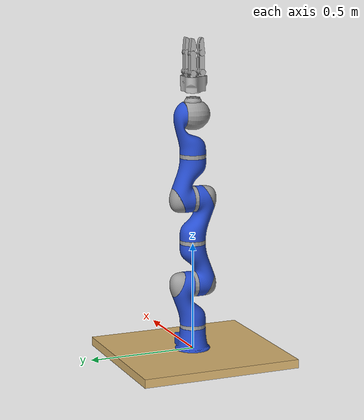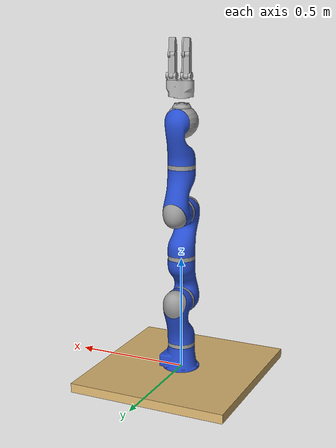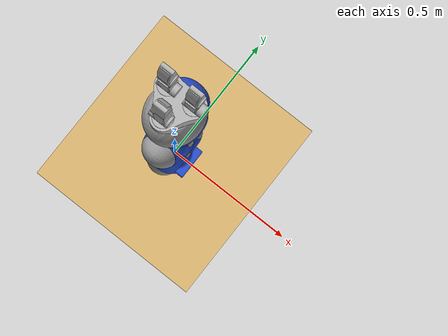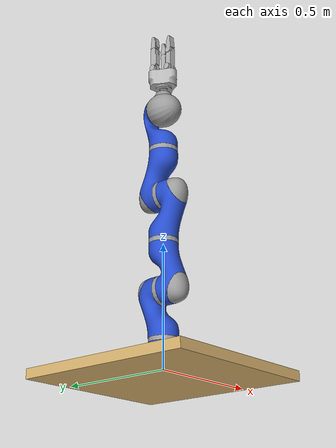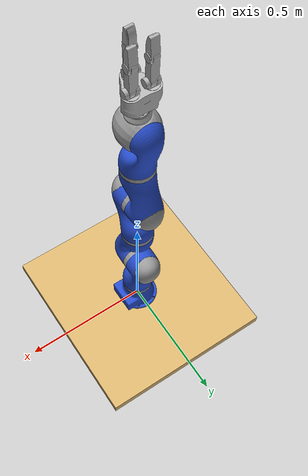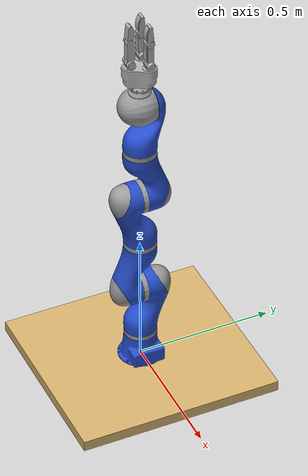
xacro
<?xml version="1.0"?>
<robot xmlns:xacro="http://www.ros.org/wiki/xacro" name="lwr">

  <xacro:arg name="use_gazebo" default="1"/>
  <xacro:arg name="use_transmission" default="1"/>
  <xacro:arg name="collision_simple" default="1"/>
  <xacro:arg name="visual_simple" default="0"/>

  <!-- KUKA LWR4 arm -->
  <xacro:include filename="$(find kuka_lwr4_description)/urdf/lwr.urdf.xacro"/>

  <!-- Schunk SDH2 hand -->
  <xacro:include filename="$(find schunk_description)/urdf/sdh/sdh.urdf.xacro"/>
  <xacro:include filename="$(find schunk_description)/urdf/materials.urdf.xacro"/>
  <schunk_sdh name="sdh" parent="lwr_arm_7_link">
    <origin rpy="0.0 0.0 ${0.5*M_PI}" xyz="0 0 0.022"/>
  </schunk_sdh>

  <xacro:if value="$(arg use_transmission)">
    <xacro:include filename="$(find schunk_description)/urdf/sdh/sdh.transmission.xacro"/>
    <schunk_sdh_transmission name="sdh"/>
  </xacro:if>

  <xacro:if value="$(arg use_gazebo)">
    <xacro:include filename="$(find schunk_description)/urdf/sdh/sdh.gazebo.xacro"/>
    <schunk_sdh_gazebo name="sdh"/>
  </xacro:if>

</robot>

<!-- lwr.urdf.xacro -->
<robot xmlns:xacro="http://www.ros.org/wiki/xacro" name="lwr">

  <xacro:arg name="use_gazebo" default="1"/>
  <xacro:arg name="use_transmission" default="1"/>
  <xacro:arg name="collision_simple" default="1"/>
  <xacro:arg name="visual_simple" default="0"/>

  <xacro:include filename="$(find kuka_lwr4_description)/urdf/defs/kuka_lwr_arm_defs.urdf.xacro"/>
  <xacro:if value="$(arg use_gazebo)">
    <xacro:include filename="$(find kuka_lwr4_description)/urdf/defs/gazebo_defs.gazebo"/>
  </xacro:if>
  <xacro:include filename="$(find kuka_lwr4_description)/urdf/defs/materials.xml"/>

  <link name="table">
    <visual>
      <origin xyz="0 0 -0.02" rpy="0 0 0"/>
      <geometry>
        <box size="0.7 0.75 0.04"/>
      </geometry>
      <material name="table_brown">
        <!-- wooden brown table -->
        <color rgba="0.839215686 0.694117647 0.42745098 1.0"/>
      </material>
    </visual>
    <collision>
      <origin xyz="0 0 -0.02" rpy="0 0 0"/>
      <geometry>
        <box size="0.7 0.75 0.04"/>
      </geometry>
    </collision>
  </link>

  <xacro:if value="$(arg use_gazebo)">
  <gazebo reference="table">
    <!-- Gazebo wood texture -->
    <material>Gazebo/Wood</material>
  </gazebo>
  </xacro:if>

  <kuka_lwr_arm parent="table" name="lwr" right="1" gazebo="$(arg use_gazebo)" transmission="$(arg use_transmission)" collisionsimple="$(arg collision_simple)" visualsimple="$(arg visual_simple)">
    <origin xyz="0 0 0" rpy="0 0 0"/>
  </kuka_lwr_arm>

</robot>

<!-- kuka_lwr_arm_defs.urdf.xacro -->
<robot xmlns:sensor="http://playerstage.sourceforge.net/gazebo/xmlschema/#sensor"
       xmlns:controller="http://playerstage.sourceforge.net/gazebo/xmlschema/#controller"
       xmlns:interface="http://playerstage.sourceforge.net/gazebo/xmlschema/#interface"
       xmlns:xacro="http://www.ros.org/wiki/xacro">

  <xacro:include filename="$(find kuka_lwr4_description)/urdf/defs/util_defs.xacro"/>

  <xacro:property name="arm_elem_base_mass" value="2.0"/>
  <xacro:property name="arm_elem_link_mass" value="2.0"/>
  <xacro:property name="arm_elem_end_link_mass" value="2.0"/>
  <xacro:property name="arm_elem_ball_link_mass" value="2.0"/>

  <xacro:property name="arm_velocity_scale_factor" value="1"/>

  <xacro:macro name="kuka_lwr_arm" params="parent name right gazebo transmission collisionsimple visualsimple *origin">

    <joint name="${parent}_${name}_arm_base_joint" type="fixed">
      <xacro:insert_block name="origin"/>
      <parent link="${parent}"/>
      <child link="base"/>
    </joint>

    <link name="base">
      <inertial>
        <mass value="${arm_elem_base_mass}"/>
        <origin xyz="0 0 0.055"/>
        <cylinder_inertia_def radius="0.06" length="0.11"
                              mass="${arm_elem_base_mass}"/>
      </inertial>

      <xacro:unless value="${visualsimple}">
      <visual>
        <origin xyz="0 0 0" rpy="0 0 ${M_PI}"/>
        <geometry>
          <mesh filename="package://kuka_lwr4_description/meshes/kuka_colour/base.dae"/>
        </geometry>
        <material name="Blue"/>
      </visual>
      </xacro:unless>
      <xacro:if value="${visualsimple}">
      <visual>
        <origin rpy="0 0 0" xyz="0.04 0 0.03"/>
        <geometry>
          <box size="0.08 0.12 0.06"/>
        </geometry>
        <material name="Blue"/>
      </visual>
      <visual>
        <origin rpy="0 0 0" xyz="0 0 0.05"/>
        <geometry>
          <cylinder length="0.1" radius="0.06"/>
        </geometry>
        <material name="Blue"/>
      </visual>
      </xacro:if>

      <xacro:unless value="${collisionsimple}">
      <collision>
        <origin xyz="0 0 0.055" rpy="0 0 ${M_PI}"/>
        <geometry>
          <mesh filename="package://kuka_lwr4_description/meshes/lwr/convex/arm_base_convex.stl"/>
        </geometry>
      </collision>
      </xacro:unless>
      <xacro:if value="${collisionsimple}">
      <collision>
        <origin rpy="0 0 0" xyz="0.04 0 0.03"/>
        <geometry>
          <box size="0.08 0.12 0.06"/>
        </geometry>
      </collision>
      <collision>
        <origin rpy="0 0 0" xyz="0 0 0.05"/>
        <geometry>
          <cylinder length="0.1" radius="0.06"/>
        </geometry>
      </collision>
      </xacro:if>
    </link>

    <xacro:if value="${gazebo}">
    <gazebo reference="calib_${name}_arm_base_link">
      <turnGravityOff>true</turnGravityOff>
    </gazebo>
    </xacro:if>

    <joint name="${name}_arm_0_joint" type="revolute">
      <origin xyz="0 0 0.11" rpy="0 0 ${M_PI}"/>
      <axis xyz="0 0 1"/>
      <limit lower="${-170 * M_PI / 180}" upper="${170 * M_PI / 180}"
             effort="176" velocity="${arm_velocity_scale_factor * 110 * M_PI / 180}" />
      <safety_controller soft_lower_limit="${-168 * M_PI / 180}"
                         soft_upper_limit="${168 * M_PI / 180}"
                         k_position="30"
                         k_velocity="30"/>
      <dynamics damping="1.0"/>
      <parent link="base"/>
      <child link="${name}_arm_1_link"/>
    </joint>

    <link name="${name}_arm_1_link">
      <inertial>
        <mass value="${arm_elem_link_mass}"/>
        <origin rpy="0 0 0" xyz="0 -0.06 0.130"/>
        <cuboid_inertia_def length="0.12" width="0.06" height="0.260"
                            mass="${arm_elem_link_mass}"/>
      </inertial>

      <xacro:unless value="${visualsimple}">
      <visual>
        <origin rpy="0 0 ${1.5*M_PI}" xyz="0 0 0.2"/>
        <geometry>
          <mesh filename="package://kuka_lwr4_description/meshes/kuka_colour/link1.dae"/>
        </geometry>
        <material name="Blue"/>
      </visual>
      <visual>
        <origin rpy="0 0 ${1.5*M_PI}" xyz="0 0 0.2"/>
        <geometry>
          <mesh filename="package://kuka_lwr4_description/meshes/kuka_colour/link1_m.dae"/>
        </geometry>
        <material name="Grey"/>
      </visual>
      <visual>
        <origin rpy="0 0 0" xyz="0 0 0"/>
        <geometry>
          <mesh filename="package://kuka_lwr4_description/meshes/kuka_colour/kuka_ring.dae"/>
        </geometry>
        <material name="Grey"/>
      </visual>
      </xacro:unless>
      <xacro:if value="${visualsimple}">
      <visual>
        <origin rpy="0 0 0" xyz="0 0 0.05"/>
        <geometry>
          <cylinder length="0.1" radius="0.06"/>
        </geometry>
        <material name="Blue"/>
      </visual>
      <visual>
        <origin rpy="0 0 0" xyz="0 -0.04 0.12"/>
        <geometry>
          <cylinder length="0.05" radius="0.03"/>
        </geometry>
        <material name="Blue"/>
      </visual>
      <visual>
        <origin rpy="0 0 0" xyz="0 -0.04 0.2"/>
        <geometry>
          <sphere radius="0.06"/>
        </geometry>
        <material name="Blue"/>
      </visual>
      </xacro:if>

      <xacro:unless value="${collisionsimple}">
      <collision>
        <origin xyz="0 0 0" rpy="0 0 0"/>
        <geometry>
          <mesh filename="package://kuka_lwr4_description/meshes/lwr/convex/arm_segment_a_convex.stl"/>
        </geometry>
      </collision>
      </xacro:unless>
      <xacro:if value="${collisionsimple}">
      <collision>
        <origin rpy="0 0 0" xyz="0 0 0.05"/>
        <geometry>
          <cylinder length="0.1" radius="0.06"/>
        </geometry>
      </collision>
      <collision>
        <origin rpy="0 0 0" xyz="0 -0.04 0.2"/>
        <geometry>
          <sphere radius="0.06"/>
      </geometry>
      </collision>
      </xacro:if>
    </link>

    <xacro:if value="${gazebo}">
    <gazebo reference="${name}_arm_1_link">
      <gravity>0</gravity>
    </gazebo>
    </xacro:if>

    <xacro:if value="${transmission}">
    <transmission name="${name}_arm_0_trans" type="SimpleTransmission">
      <actuator name="${name}_arm_0_motor"/>
      <joint name="${name}_arm_0_joint"/>
      <mechanicalReduction>1.0</mechanicalReduction>
    </transmission>
    </xacro:if>

    <!-- Third segment of the arm. Joint along y-axis -->
    <joint name="${name}_arm_1_joint" type="revolute">
      <origin xyz="0 0 0.2" rpy="0 0 0"/>
      <axis xyz="0 1 0"/>
      <limit lower="${-120 * M_PI / 180}" upper="${120 * M_PI / 180}"
             effort="176" velocity="${arm_velocity_scale_factor * 110 * M_PI / 180}" />
      <safety_controller soft_lower_limit="${-118 * M_PI / 180}"
                         soft_upper_limit="${118 * M_PI / 180}"
                         k_position="30"
                         k_velocity="30"/>
      <dynamics damping="1.0" friction="10"/>
      <parent link="${name}_arm_1_link"/>
      <child link="${name}_arm_2_link"/>
    </joint>

    <link name="${name}_arm_2_link">
      <inertial>
        <mass value="${arm_elem_link_mass}"/>
        <origin rpy="0 0 0" xyz="0 0.06 ${0.130 - 0.06}"/>
        <cuboid_inertia_def length="0.12" width="0.06" height="0.260"
                            mass="${arm_elem_link_mass}"/>
      </inertial>

      <xacro:unless value="${visualsimple}">
      <visual>
        <origin rpy="0 0 ${1.5*M_PI}" xyz="0 0 0"/>
        <geometry>
          <mesh filename="package://kuka_lwr4_description/meshes/kuka_colour/link2.dae"/>
        </geometry>
        <material name="Blue"/>
      </visual>
      <visual>
        <origin rpy="0 0 ${1.5*M_PI}" xyz="0 0 0"/>
        <geometry>
          <mesh filename="package://kuka_lwr4_description/meshes/kuka_colour/link2_m.dae"/>
        </geometry>
        <material name="Grey"/>
      </visual>
      <visual>
        <origin rpy="${0.5*M_PI} 0 0" xyz="0 0 0"/>
        <geometry>
          <mesh filename="package://kuka_lwr4_description/meshes/kuka_colour/kuka_ring.dae"/>
        </geometry>
        <material name="Grey"/>
      </visual>
      </xacro:unless>
      <xacro:if value="${visualsimple}">
      <visual>
        <origin rpy="0 0 0" xyz="0 0 0.15"/>
        <geometry>
          <cylinder length="0.1" radius="0.06"/>
        </geometry>
        <material name="Blue"/>
      </visual>
      <visual>
        <origin rpy="0 0 0" xyz="0 0.04 0.08"/>
        <geometry>
          <cylinder length="0.05" radius="0.03"/>
        </geometry>
        <material name="Blue"/>
      </visual>
      <visual>
        <origin rpy="0 0 0" xyz="0 0.04 0"/>
        <geometry>
          <sphere radius="0.06"/>
        </geometry>
      <material name="Blue"/>
      </visual>
      </xacro:if>

      <xacro:unless value="${collisionsimple}">
      <collision>
        <origin xyz="0 0 0.2" rpy="${M_PI} 0 0"/>
        <geometry>
          <mesh filename="package://kuka_lwr4_description/meshes/lwr/convex/arm_segment_b_convex.stl"/>
        </geometry>
      </collision>
      </xacro:unless>
      <xacro:if value="${collisionsimple}">
      <collision>
        <origin rpy="0 0 0" xyz="0 0 0.15"/>
        <geometry>
          <cylinder length="0.1" radius="0.06"/>
        </geometry>
      </collision>
      <collision>
        <origin rpy="0 0 0" xyz="0 0.04 0"/>
        <geometry>
        <sphere radius="0.06"/>
      </geometry>
      </collision>
      </xacro:if>
    </link>

    <xacro:if value="${gazebo}">
    <gazebo reference="${name}_arm_2_link">
      <gravity>0</gravity>
    </gazebo>
    </xacro:if>

    <xacro:if value="${transmission}">
    <transmission name="${name}_arm_1_trans" type="SimpleTransmission">
      <actuator name="${name}_arm_1_motor"/>
      <joint name="${name}_arm_1_joint"/>
      <mechanicalReduction>1.0</mechanicalReduction>
    </transmission>
    </xacro:if>

    <joint name="${name}_arm_2_joint" type="revolute">
      <origin xyz="0 0 0.20" rpy="0 0 0"/>
      <axis xyz="0 0 1"/>
      <limit lower="${-170 * M_PI / 180}" upper="${170 * M_PI / 180}"
             effort="100" velocity="${arm_velocity_scale_factor * 130 * M_PI / 180}" />
      <safety_controller soft_lower_limit="${-168 * M_PI / 180}"
                         soft_upper_limit="${168 * M_PI / 180}"
                         k_position="30"
                         k_velocity="30"/>
      <dynamics damping="1.0"/>
      <parent link="${name}_arm_2_link"/>
      <child link="${name}_arm_3_link"/>
    </joint>

    <link name="${name}_arm_3_link">
      <inertial>
        <mass value="${arm_elem_link_mass}"/>
        <origin rpy="0 0 0" xyz="0 0.06 0.130"/>
        <cuboid_inertia_def length="0.12" width="0.06" height="0.260"
                            mass="${arm_elem_link_mass}"/>
      </inertial>

      <xacro:unless value="${visualsimple}">
      <visual>
        <origin rpy="0 0 ${1.5*M_PI}" xyz="0 0 0.2"/>
        <geometry>
          <mesh filename="package://kuka_lwr4_description/meshes/kuka_colour/link3.dae"/>
        </geometry>
        <material name="Blue"/>
      </visual>
      <visual>
        <origin rpy="0 0 ${1.5*M_PI}" xyz="0 0 0.2"/>
        <geometry>
          <mesh filename="package://kuka_lwr4_description/meshes/kuka_colour/link3_m.dae"/>
        </geometry>
        <material name="Grey"/>
      </visual>
      <visual>
        <origin rpy="0 0 0" xyz="0 0 0"/>
        <geometry>
          <mesh filename="package://kuka_lwr4_description/meshes/kuka_colour/kuka_ring.dae"/>
        </geometry>
        <material name="Grey"/>
      </visual>
      </xacro:unless>
      <xacro:if value="${visualsimple}">
      <visual>
        <origin rpy="0 0 0" xyz="0 0 0.05"/>
        <geometry>
          <cylinder length="0.1" radius="0.06"/>
        </geometry>
        <material name="Blue"/>
      </visual>
      <visual>
        <origin rpy="0 0 0" xyz="0 0.04 0.12"/>
        <geometry>
          <cylinder length="0.05" radius="0.03"/>
        </geometry>
        <material name="Blue"/>
      </visual>
      <visual>
        <origin rpy="0 0 0" xyz="0 0.04 0.2"/>
        <geometry>
          <sphere radius="0.06"/>
        </geometry>
        <material name="Blue"/>
      </visual>
      </xacro:if>

      <xacro:unless value="${collisionsimple}">
      <collision>
        <origin xyz="0 0 0" rpy="0 0 ${M_PI}"/>
        <geometry>
          <mesh filename="package://kuka_lwr4_description/meshes/lwr/convex/arm_segment_a_convex.stl"/>
        </geometry>
      </collision>
      </xacro:unless>
      <xacro:if value="${collisionsimple}">
      <collision>
        <origin rpy="0 0 0" xyz="0 0 0.05"/>
        <geometry>
          <cylinder length="0.1" radius="0.06"/>
        </geometry>
      </collision>
      <collision>
        <origin rpy="0 0 0" xyz="0 0.04 0.2"/>
        <geometry>
          <sphere radius="0.06"/>
        </geometry>
      </collision>
      </xacro:if>
    </link>

    <xacro:if value="${gazebo}">
    <gazebo reference="${name}_arm_3_link">
      <turnGravityOff>true</turnGravityOff>
    </gazebo>
    </xacro:if>

    <xacro:if value="${transmission}">
    <transmission name="${name}_arm_2_trans" type="SimpleTransmission">
      <actuator name="${name}_arm_2_motor"/>
      <joint name="${name}_arm_2_joint"/>
      <mechanicalReduction>1.0</mechanicalReduction>
    </transmission>
    </xacro:if>

    <!-- fifth element of the arm. x-axis -->
    <joint name="${name}_arm_3_joint" type="revolute">
      <origin xyz="0 0 0.20" rpy="0 0 0"/>
      <axis xyz="0 -1 0"/>
      <limit lower="${-120 * M_PI / 180}" upper="${120 * M_PI / 180}"
             effort="100" velocity="${arm_velocity_scale_factor * 130 * M_PI / 180}" />
      <safety_controller soft_lower_limit="${-118 * M_PI / 180}"
                         soft_upper_limit="${118 * M_PI / 180}"
                         k_position="30"
                         k_velocity="30"/>
      <dynamics damping="1.0"/>
      <parent link="${name}_arm_3_link"/>
      <child link="${name}_arm_4_link"/>
    </joint>

    <link name="${name}_arm_4_link">
      <inertial>
        <mass value="${arm_elem_link_mass}"/>
        <origin rpy="0 0 0" xyz="0 -0.06 ${0.130 - 0.06}"/>
        <cuboid_inertia_def length="0.12" width="0.06" height="0.2600"
                            mass="${arm_elem_link_mass}"/>
      </inertial>

      <xacro:unless value="${visualsimple}">
      <visual>
        <origin rpy="0 0 ${1.5*M_PI}" xyz="0 0 0"/>
        <geometry>
          <mesh filename="package://kuka_lwr4_description/meshes/kuka_colour/link4.dae"/>
        </geometry>
        <material name="Blue"/>
      </visual>
      <visual>
        <origin rpy="0 0 ${1.5*M_PI}" xyz="0 0 0"/>
        <geometry>
          <mesh filename="package://kuka_lwr4_description/meshes/kuka_colour/link4_m.dae"/>
        </geometry>
        <material name="Grey"/>
      </visual>
      <visual>
        <origin rpy="${0.5*M_PI} 0 0" xyz="0 0 0"/>
        <geometry>
          <mesh filename="package://kuka_lwr4_description/meshes/kuka_colour/kuka_ring.dae"/>
        </geometry>
        <material name="Grey"/>
      </visual>
      </xacro:unless>
      <xacro:if value="${visualsimple}">
      <visual>
        <origin rpy="0 0 0" xyz="0 0 0.15"/>
        <geometry>
          <cylinder length="0.1" radius="0.06"/>
        </geometry>
        <material name="Blue"/>
      </visual>
      <visual>
        <origin rpy="0 0 0" xyz="0 -0.04 0.08"/>
        <geometry>
          <cylinder length="0.05" radius="0.03"/>
        </geometry>
        <material name="Blue"/>
      </visual>
      <visual>
        <origin rpy="0 0 0" xyz="0 -0.04 0"/>
        <geometry>
          <sphere radius="0.06"/>
        </geometry>
        <material name="Blue"/>
      </visual>
      </xacro:if>

      <xacro:unless value="${collisionsimple}">
      <collision>
        <origin xyz="0 0 0.2" rpy="0 ${M_PI} 0"/>
        <geometry>
          <mesh filename="package://kuka_lwr4_description/meshes/lwr/convex/arm_segment_b_convex.stl"/>
        </geometry>
      </collision>
      </xacro:unless>
      <xacro:if value="${collisionsimple}">
      <collision>
        <origin rpy="0 0 0" xyz="0 0 0.15"/>
        <geometry>
          <cylinder length="0.1" radius="0.06"/>
        </geometry>
      </collision>
      <collision>
        <origin rpy="0 0 0" xyz="0 -0.04 0"/>
        <geometry>
          <sphere radius="0.06"/>
        </geometry>
      </collision>
      </xacro:if>
    </link>

    <xacro:if value="${gazebo}">
    <gazebo reference="${name}_arm_4_link">
      <turnGravityOff>true</turnGravityOff>
    </gazebo>
    </xacro:if>

    <xacro:if value="${transmission}">
    <transmission name="${name}_arm_3_trans" type="SimpleTransmission">
      <actuator name="${name}_arm_3_motor"/>
      <joint name="${name}_arm_3_joint"/>
      <mechanicalReduction>1.0</mechanicalReduction>
    </transmission>
    </xacro:if>

    <joint name="${name}_arm_4_joint" type="revolute">
      <origin xyz="0 0 0.20" rpy="0 0 0"/>
      <axis xyz="0 0 1"/>
      <limit lower="${-170 * M_PI / 180}" upper="${170 * M_PI / 180}"
             effort="100" velocity="${arm_velocity_scale_factor * 130 * M_PI / 180}" />
      <safety_controller soft_lower_limit="${-168 * M_PI / 180}"
                         soft_upper_limit="${168 * M_PI / 180}"
                         k_position="30"
                         k_velocity="30"/>
      <dynamics damping="1.0"/>
      <parent link="${name}_arm_4_link"/>
      <child link="${name}_arm_5_link"/>
    </joint>

    <link name="${name}_arm_5_link">
      <inertial>
        <mass value="${arm_elem_link_mass}"/>
        <origin rpy="0 0 0" xyz="0 0 0.124"/>
        <cuboid_inertia_def length="0.12" width="0.06" height="0.248"
                            mass="${arm_elem_link_mass}"/>
      </inertial>

      <xacro:unless value="${visualsimple}">
      <visual>
        <origin rpy="0 0 ${1.5*M_PI}" xyz="0 0 0.19"/>
        <geometry name="${name}_arm_5_geom">
          <mesh filename="package://kuka_lwr4_description/meshes/kuka_colour/link5.dae"/>
        </geometry>
        <material name="Blue"/>
      </visual>
      <visual>
        <origin rpy="0 0 0" xyz="0 0 0"/>
        <geometry>
          <mesh filename="package://kuka_lwr4_description/meshes/kuka_colour/kuka_ring.dae"/>
        </geometry>
        <material name="Grey"/>
      </visual>
      </xacro:unless>
      <xacro:if value="${visualsimple}">
      <visual>
        <origin rpy="0 0 0" xyz="0 0 0.05"/>
        <geometry>
          <cylinder length="0.1" radius="0.06"/>
        </geometry>
        <material name="Blue"/>
      </visual>
      <visual>
        <origin rpy="0 0 0" xyz="0 -0.04 0.12"/>
        <geometry>
          <cylinder length="0.05" radius="0.03"/>
        </geometry>
        <material name="Blue"/>
      </visual>
      <visual>
        <origin rpy="0 0 0" xyz="0 -0.04 0.2"/>
        <geometry>
          <sphere radius="0.06"/>
        </geometry>
        <material name="Blue"/>
      </visual>
      </xacro:if>

      <xacro:unless value="${collisionsimple}">
      <collision>
        <origin xyz="0 0 0" rpy="0 0 0"/>
        <geometry>
          <mesh filename="package://kuka_lwr4_description/meshes/lwr/convex/arm_segment_last_convex.stl"/>
        </geometry>
      </collision>
      </xacro:unless>
      <xacro:if value="${collisionsimple}">
      <collision>
        <origin rpy="0 0 0" xyz="0 0 0.05"/>
        <geometry>
          <cylinder length="0.1" radius="0.06"/>
        </geometry>
      </collision>
      <collision>
        <origin rpy="0 0 0" xyz="0 -0.04 0.2"/>
        <geometry>
          <sphere radius="0.06"/>
        </geometry>
      </collision>
      </xacro:if>
    </link>

    <xacro:if value="${gazebo}">
    <gazebo reference="${name}_arm_5_link">
      <turnGravityOff>true</turnGravityOff>
    </gazebo>
    </xacro:if>

    <xacro:if value="${transmission}">
    <transmission name="${name}_arm_4_trans" type="SimpleTransmission">
      <actuator name="${name}_arm_4_motor"/>
      <joint name="${name}_arm_4_joint"/>
      <mechanicalReduction>1.0</mechanicalReduction>
    </transmission>
    </xacro:if>

    <joint name="${name}_arm_5_joint" type="revolute">
      <origin xyz="0 0 0.19" rpy="0 0 0"/>
      <axis xyz="0 1 0"/>
      <limit lower="${-120 * M_PI / 180}" upper="${120 * M_PI / 180}"
             effort="38" velocity="${arm_velocity_scale_factor * 180 * M_PI / 180}" />
      <safety_controller soft_lower_limit="${-118 * M_PI / 180}"
                         soft_upper_limit="${118 * M_PI / 180}"
                         k_position="30"
                         k_velocity="30"/>
      <dynamics damping="1.0"/>
      <parent link="${name}_arm_5_link"/>
      <child link="${name}_arm_6_link"/>
    </joint>

    <link name="${name}_arm_6_link">
      <inertial>
        <mass value="0.2"/>
        <origin rpy="0 0 0" xyz="0 0 0.0625"/>
        <cuboid_inertia_def length="0.125" width="0.125" height="0.125"
                            mass="0.2"/>
      </inertial>

      <xacro:unless value="${visualsimple}">
      <visual>
        <origin rpy="0 0 ${M_PI}" xyz="0 0 0"/>
        <geometry>
          <mesh filename="package://kuka_lwr4_description/meshes/kuka_colour/kuka_wrist.dae"/>
        </geometry>
        <material name="Grey"/>
      </visual>
      </xacro:unless>
      <xacro:if value="${visualsimple}">
      <visual>
        <origin rpy="0 0 0" xyz="0 0.01 0"/>
        <geometry>
          <sphere radius="0.07"/>
        </geometry>
        <material name="Grey"/>
      </visual>
      <visual>
        <origin rpy="0 0 0" xyz="0 -0.01 0"/>
        <geometry>
          <sphere radius="0.07"/>
        </geometry>
      </visual>
      </xacro:if>

      <xacro:unless value="${collisionsimple}">
      <collision>
        <origin xyz="0 0 0" rpy="0 0 0"/>
        <geometry>
          <mesh filename="package://kuka_lwr4_description/meshes/lwr/convex/arm_wrist_convex.stl"/>
        </geometry>
      </collision>
      </xacro:unless>
      <xacro:if value="${collisionsimple}">
      <collision>
        <origin rpy="0 0 0" xyz="0 0.01 0"/>
        <geometry>
          <sphere radius="0.07"/>
        </geometry>
        <material name="Grey"/>
      </collision>
      <collision>
        <origin rpy="0 0 0" xyz="0 -0.01 0"/>
        <geometry>
          <sphere radius="0.07"/>
        </geometry>
      </collision>
      </xacro:if>
    </link>

    <xacro:if value="${gazebo}">
    <gazebo reference="${name}_arm_6_link">
      <turnGravityOff>true</turnGravityOff>
    </gazebo>
    </xacro:if>

    <xacro:if value="${transmission}">
    <transmission name="${name}_arm_5_trans" type="SimpleTransmission">
      <actuator name="${name}_arm_5_motor"/>
      <joint name="${name}_arm_5_joint"/>
      <mechanicalReduction>1.0</mechanicalReduction>
    </transmission>
    </xacro:if>

    <joint name="${name}_arm_6_joint" type="revolute">
      <origin xyz="0 0 0.078" rpy="0 0 ${M_PI}"/>
      <axis xyz="0 0 1"/>
      <limit lower="${-170 * M_PI / 180}" upper="${170 * M_PI / 180}"
             effort="38" velocity="${arm_velocity_scale_factor * 180 * M_PI / 180}" />
      <safety_controller soft_lower_limit="${-168 * M_PI / 180}"
                         soft_upper_limit="${168 * M_PI / 180}"
                         k_position="30"
                         k_velocity="30"/>
      <dynamics damping="1.0"/>
      <parent link="${name}_arm_6_link"/>
      <child link="${name}_arm_7_link"/>
    </joint>

    <link name="${name}_arm_7_link">
      <inertial>
        <mass value="0.2"/>
        <origin xyz="0 0 0"/>
        <cuboid_inertia_def length="1" width="1" height="1"
                            mass="0.2"/>
      </inertial>

      <xacro:unless value="${visualsimple}">
      <visual>
        <origin xyz="0 0 0" rpy="0 0 0"/>
        <geometry>
          <mesh filename="package://kuka_lwr4_description/meshes/kuka_colour/link7.dae"/>
        </geometry>
        <material name="Grey"/>
      </visual>
      </xacro:unless>
      <xacro:if value="${visualsimple}">
      <visual>
        <origin rpy="0 0 -0.785398163397" xyz="0 0 0"/>
        <geometry>
          <cylinder length="0.05" radius="0.04"/>
        </geometry>
        <material name="Grey"/>
      </visual>
      </xacro:if>

      <xacro:unless value="${collisionsimple}">
      <collision>
        <origin xyz="0 0 0" rpy="0 0 ${right * -1/4 * M_PI}"/>
        <geometry>
          <cylinder radius="0.04" length="0.05"/>
        </geometry>
      </collision>
      </xacro:unless>
      <xacro:if value="${collisionsimple}">
      <collision>
        <origin rpy="0 0 -0.785398163397" xyz="0 0 0"/>
        <geometry>
          <cylinder length="0.05" radius="0.04"/>
        </geometry>
      </collision>
      </xacro:if>
    </link>

    <xacro:if value="${gazebo}">
    <gazebo reference="${name}_arm_7_link">
      <turnGravityOff>true</turnGravityOff>
    </gazebo>
    </xacro:if>

    <xacro:if value="${transmission}">
    <transmission name="${name}_arm_6_trans" type="SimpleTransmission">
      <actuator name="${name}_arm_6_motor"/>
      <joint name="${name}_arm_6_joint"/>
      <mechanicalReduction>1.0</mechanicalReduction>
    </transmission>
    </xacro:if>

  </xacro:macro>

</robot>

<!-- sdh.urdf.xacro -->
<robot xmlns:xacro="http://www.ros.org/wiki/xacro">

  <xacro:include filename="$(find schunk_description)/urdf/sdh/sdh.gazebo.xacro" />
  <xacro:include filename="$(find schunk_description)/urdf/sdh/sdh.transmission.xacro" />

  <xacro:macro name="schunk_sdh" params="parent name *origin">

    <!-- joint between arm_7_link and sdh_palm_link -->
    <joint name="${name}_palm_joint" type="fixed" >
      <insert_block name="origin" />
      <parent link="${parent}" />
      <child link="${name}_palm_link" />
    </joint>

    <link name="${name}_palm_link">
      <inertial>
        <origin xyz="0 0 0" rpy="0 0 0"/>
        <mass value="1"/>
        <inertia ixx="0.01" ixy="0" ixz="0" iyy="0.01" iyz="0" izz="0.01" />
      </inertial>

      <visual>
        <origin xyz="0 0 0" rpy="0 0 0" />
        <geometry>
          <mesh filename="package://schunk_description/meshes/sdh/palm.stl" />
        </geometry>
        <material name="Schunk/LightGrey" />
      </visual>

      <collision>
        <origin xyz="0 0 0" rpy="0 0 0" />
        <geometry>
          <mesh filename="package://schunk_description/meshes/sdh/palm.stl"/>
        </geometry>
      </collision>
    </link>

    <!-- grasp link -->
    <joint name="${name}_grasp_joint" type="fixed" >
      <origin xyz="0 0 0.15" rpy="0 0 0"/>
      <parent link="${name}_palm_link" />
      <child link="${name}_grasp_link" />
    </joint>

    <link name="${name}_grasp_link"/>

    <!-- tip link -->
    <joint name="${name}_tip_joint" type="fixed" >
      <origin xyz="0 0 0.22" rpy="0 0 0"/>
      <parent link="${name}_palm_link" />
      <child link="${name}_tip_link" />
    </joint>

    <link name="${name}_tip_link"/>

    <!-- finger1 -->
    <!-- joint between sdh_palm_link and sdh_finger_11_link -->
    <joint name="${name}_knuckle_joint" type="revolute">
      <origin xyz="0.01905 0.033 0.0745" rpy="0 0 3.14159265" />
      <parent link="${name}_palm_link"/>
      <child link="${name}_finger_11_link"/>
      <axis xyz="0 0 1" />
      <dynamics damping="1" />
      <limit effort="100" lower="0" upper="1.570796327" velocity="5"/>
    </joint>

    <link name="${name}_finger_11_link">
      <inertial>
        <origin xyz="0 0 0" rpy="0 0 0"/>
        <mass value="0.1"/>
        <inertia ixx="0.01" ixy="0" ixz="0" iyy="0.01" iyz="0" izz="0.01" />
      </inertial>

      <visual>
        <origin xyz="0 0 0" rpy="0 0 0" />
        <geometry>
          <mesh filename="package://schunk_description/meshes/sdh/knuckle.stl" />
        </geometry>
        <material name="Schunk/LightGrey" />
      </visual>

      <collision>
        <origin xyz="0 0 0" rpy="0 0 0" />
        <geometry>
        <mesh filename="package://schunk_description/meshes/sdh/knuckle.stl"/>
        </geometry>
      </collision>
    </link>

    <!-- joint between sdh_finger_11_link and sdh_finger_12_link -->
    <joint name="${name}_finger_12_joint" type="revolute">
      <origin xyz="0 0 0.0165" rpy="0 0 0" />
      <parent link="${name}_finger_11_link"/>
      <child link="${name}_finger_12_link"/>
      <axis xyz="0 1 0" />
      <dynamics damping="1" />
      <limit effort="100" lower="-1.570796327" upper="1.570796327" velocity="5"/>
    </joint>

    <link name="${name}_finger_12_link">
      <inertial>
        <origin xyz="0 0 0" rpy="0 0 0"/>
        <mass value="0.1"/>
        <inertia ixx="0.01" ixy="0" ixz="0" iyy="0.01" iyz="0" izz="0.01" />
      </inertial>

      <visual>
        <origin xyz="0 0 0" rpy="0 0 0" />
        <geometry>
          <mesh filename="package://schunk_description/meshes/sdh/finger.stl" />
        </geometry>
      <material name="Schunk/LightGrey" />
      </visual>

      <collision>
        <origin xyz="0 0 0" rpy="0 0 0" />
        <geometry>
          <mesh filename="package://schunk_description/meshes/sdh/finger.stl"/>
        </geometry>
      </collision>
    </link>

    <!-- joint between sdh_finger_12_link and sdh_finger_13_link -->
    <joint name="${name}_finger_13_joint" type="revolute">

      <origin xyz="0 0 0.0865" rpy="0 0 0" />
      <parent link="${name}_finger_12_link"/>
      <child link="${name}_finger_13_link"/>
      <axis xyz="0 1 0" />
      <dynamics damping="1" />
      <limit effort="100" lower="-1.570796327" upper="1.570796327" velocity="5"/>
    </joint>

    <link name="${name}_finger_13_link">
      <inertial>
      <origin xyz="0 0 0" rpy="0 0 0"/>
        <mass value="0.1"/>
        <inertia ixx="0.01" ixy="0" ixz="0" iyy="0.01" iyz="0" izz="0.01" />
      </inertial>

      <visual>
        <origin xyz="0 0 0" rpy="0 0 0" />
        <geometry>
          <mesh filename="package://schunk_description/meshes/sdh/finger_tip.stl" />
        </geometry>
        <material name="Schunk/LightGrey" />
      </visual>

      <collision>
        <origin xyz="0 0 0" rpy="0 0 0" />
        <geometry>
          <mesh filename="package://schunk_description/meshes/sdh/finger_tip.stl"/>
        </geometry>
      </collision>
    </link>

    <!-- finger2 -->
    <!-- joint between sdh_palm_link and sdh_finger_21_link -->
    <joint name="${name}_finger_21_joint" type="revolute">
      <mimic joint="${name}_knuckle_joint" multiplier="1" offset="0"/>
      <origin xyz="0.01905 -0.033 0.0745" rpy="0 0 3.14159265" />
      <parent link="${name}_palm_link"/>
      <child link="${name}_finger_21_link"/>
      <axis xyz="0 0 -1" />
      <dynamics damping="1" />
      <limit effort="100" lower="0" upper="1.570796327" velocity="5"/>
    </joint>

    <link name="${name}_finger_21_link">
      <inertial>
        <origin xyz="0 0 0" rpy="0 0 0"/>
        <mass value="0.1"/>
        <inertia ixx="0.01" ixy="0" ixz="0" iyy="0.01" iyz="0" izz="0.01" />
      </inertial>

      <visual>
        <origin xyz="0 0 0" rpy="0 0 0" />
        <geometry>
          <mesh filename="package://schunk_description/meshes/sdh/knuckle.stl" />
        </geometry>
        <material name="Schunk/LightGrey" />
      </visual>

      <collision>
        <origin xyz="0 0 0" rpy="0 0 0" />
        <geometry>
          <mesh filename="package://schunk_description/meshes/sdh/knuckle.stl"/>
        </geometry>
      </collision>
    </link>

    <!-- joint between sdh_finger_21_link and sdh_finger_22_link -->
    <joint name="${name}_finger_22_joint" type="revolute">
      <origin xyz="0 0 0.0165" rpy="0 0 0" />
      <parent link="${name}_finger_21_link"/>
      <child link="${name}_finger_22_link"/>
      <axis xyz="0 1 0" />
      <dynamics damping="1" />
      <limit effort="100" lower="-1.570796327" upper="1.570796327" velocity="5"/>
    </joint>

    <link name="${name}_finger_22_link">
      <inertial>
        <origin xyz="0 0 0" rpy="0 0 0"/>
        <mass value="0.1"/>
        <inertia ixx="0.01" ixy="0" ixz="0" iyy="0.01" iyz="0" izz="0.01" />
      </inertial>

      <visual>
        <origin xyz="0 0 0" rpy="0 0 0" />
        <geometry>
          <mesh filename="package://schunk_description/meshes/sdh/finger.stl" />
        </geometry>
        <material name="Schunk/LightGrey" />
      </visual>

      <collision>
        <origin xyz="0 0 0" rpy="0 0 0" />
        <geometry>
          <mesh filename="package://schunk_description/meshes/sdh/finger.stl"/>
        </geometry>
      </collision>
    </link>

    <!-- joint between sdh_finger_22_link and sdh_finger_23_link -->
    <joint name="${name}_finger_23_joint" type="revolute">
      <origin xyz="0 0 0.0865" rpy="0 0 0" />
      <parent link="${name}_finger_22_link"/>
      <child link="${name}_finger_23_link"/>
      <axis xyz="0 1 0" />
      <dynamics damping="1" />
      <limit effort="100" lower="-1.570796327" upper="1.570796327" velocity="5"/>
    </joint>

    <link name="${name}_finger_23_link">
      <inertial>
        <origin xyz="0 0 0" rpy="0 0 0"/>
        <mass value="0.1"/>
        <inertia ixx="0.01" ixy="0" ixz="0" iyy="0.01" iyz="0" izz="0.01" />
      </inertial>

      <visual>
        <origin xyz="0 0 0" rpy="0 0 0" />
        <geometry>
          <mesh filename="package://schunk_description/meshes/sdh/finger_tip.stl" />
        </geometry>
        <material name="Schunk/LightGrey" />
      </visual>

      <collision>
        <origin xyz="0 0 0" rpy="0 0 0" />
        <geometry>
          <mesh filename="package://schunk_description/meshes/sdh/finger_tip.stl"/>
        </geometry>
      </collision>
    </link>

    <!-- thumb -->
    <!-- joint between sdh_palm_link and sdh_thumb_1_link -->
    <joint name="${name}_thumb_1_joint" type="fixed">
      <origin xyz="-0.03811 0 0.0745 " rpy="0 0 0" />
      <parent link="${name}_palm_link"/>
      <child link="${name}_thumb_1_link"/>
    </joint>

    <link name="${name}_thumb_1_link">
      <inertial>
        <origin xyz="0 0 0" rpy="0 0 0"/>
        <mass value="0.1"/>
        <inertia ixx="0.01" ixy="0" ixz="0" iyy="0.01" iyz="0" izz="0.01" />
      </inertial>

      <visual>
        <origin xyz="0 0 0" rpy="0 0 0" />
        <geometry>
          <mesh filename="package://schunk_description/meshes/sdh/knuckle.stl" />
        </geometry>
        <material name="Schunk/LightGrey" />
      </visual>

      <collision>
        <origin xyz="0 0 0" rpy="0 0 0" />
        <geometry>
          <mesh filename="package://schunk_description/meshes/sdh/knuckle.stl"/>
        </geometry>
      </collision>
    </link>

    <!-- joint between sdh_thumb_1_link and shd_thumb_2_link -->
    <joint name="${name}_thumb_2_joint" type="revolute">
    <origin xyz="0 0 0.0165" rpy="0 0 0" />
    <parent link="${name}_thumb_1_link"/>
    <child link="${name}_thumb_2_link"/>
    <axis xyz="0 1 0" />
    <dynamics damping="1" />
    <limit effort="100" lower="-1.570796327" upper="1.570796327" velocity="5"/>
    </joint>

    <link name="${name}_thumb_2_link">
      <inertial>
        <origin xyz="0 0 0" rpy="0 0 0"/>
        <mass value="0.1"/>
        <inertia ixx="0.01" ixy="0" ixz="0" iyy="0.01" iyz="0" izz="0.01" />
      </inertial>

      <visual>
        <origin xyz="0 0 0" rpy="0 0 0" />
        <geometry>
          <mesh filename="package://schunk_description/meshes/sdh/finger.stl" />
        </geometry>
        <material name="Schunk/LightGrey" />
      </visual>

      <collision>
        <origin xyz="0 0 0" rpy="0 0 0" />
        <geometry>
          <mesh filename="package://schunk_description/meshes/sdh/finger.stl"/>
        </geometry>
      </collision>
    </link>

    <!-- joint between sdh_thumb_2_link and sdh_thumb_3_link -->
    <joint name="${name}_thumb_3_joint" type="revolute">
      <origin xyz="0 0 0.0865" rpy="0 0 0" />
      <parent link="${name}_thumb_2_link"/>
      <child link="${name}_thumb_3_link"/>
      <axis xyz="0 1 0" />
      <dynamics damping="1" />
      <limit effort="100" lower="-1.570796327" upper="1.570796327" velocity="5"/>
    </joint>

    <link name="${name}_thumb_3_link">
      <inertial>
        <origin xyz="0 0 0" rpy="0 0 0"/>
        <mass value="0.1"/>
        <inertia ixx="0.01" ixy="0" ixz="0" iyy="0.01" iyz="0" izz="0.01" />
      </inertial>

      <visual>
        <origin xyz="0 0 0" rpy="0 0 0" />
        <geometry>
          <mesh filename="package://schunk_description/meshes/sdh/finger_tip.stl" />
        </geometry>
        <material name="Schunk/LightGrey" />
      </visual>

      <collision>
        <origin xyz="0 0 0" rpy="0 0 0" />
        <geometry>
          <mesh filename="package://schunk_description/meshes/sdh/finger_tip.stl"/>
        </geometry>
      </collision>
    </link>

    <!-- extensions -->
    <xacro:schunk_sdh_gazebo name="${name}" />
    <xacro:schunk_sdh_transmission name="${name}" />

  </xacro:macro>

</robot>

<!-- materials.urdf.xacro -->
<robot>

  <material name="Schunk/LightGrey">
    <color rgba="0.7 0.7 0.7 1.0"/>
  </material>

  <material name="Schunk/DarkGrey">
    <color rgba="0.4 0.4 0.4 1.0"/>
  </material>

  <material name="Schunk/Black">
    <color rgba="0.0 0.0 0.0 1.0"/>
  </material>

  <material name="Schunk/DarkGolden">
    <color rgba="0.4 0.4 0.3 1.0"/>
  </material>

  <material name="Schunk/Blue">
    <color rgba="0.0 0.0 0.8 1.0"/>
  </material>

</robot>
